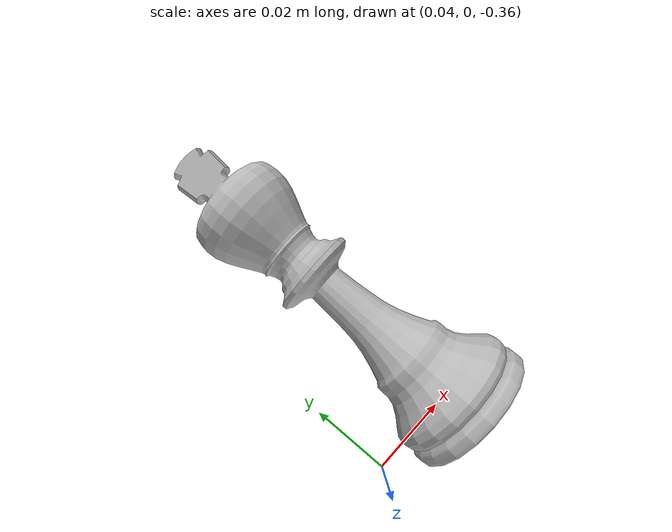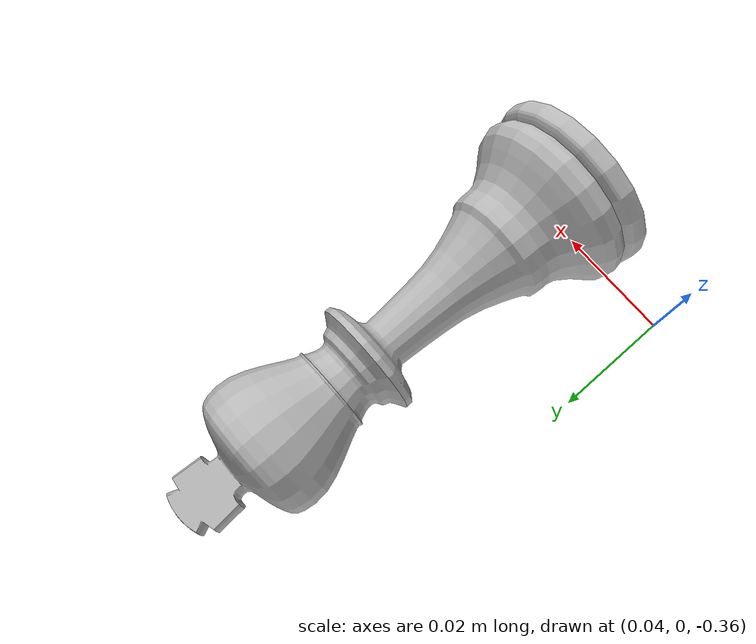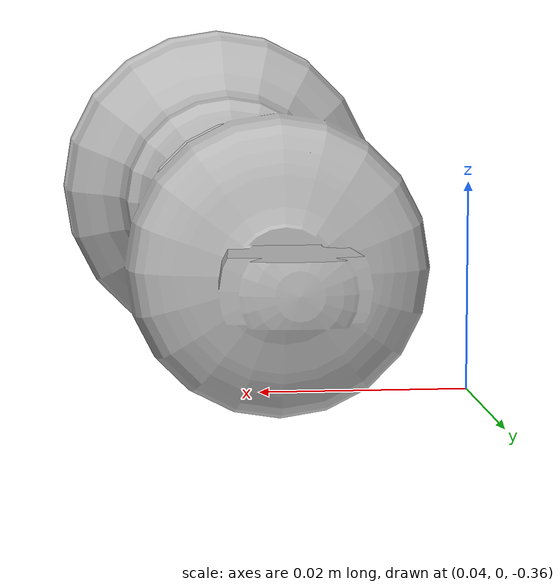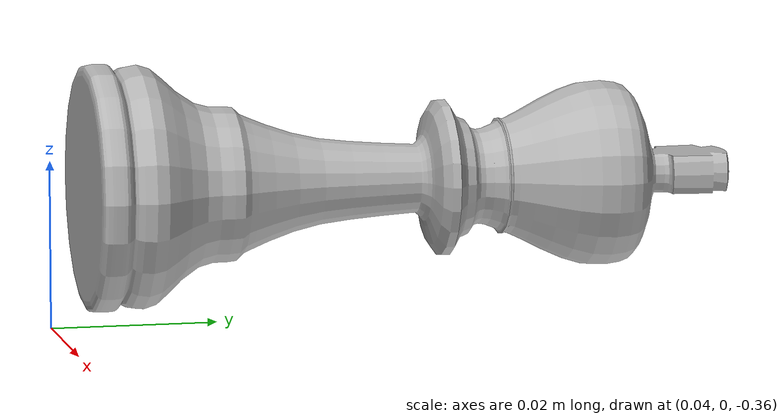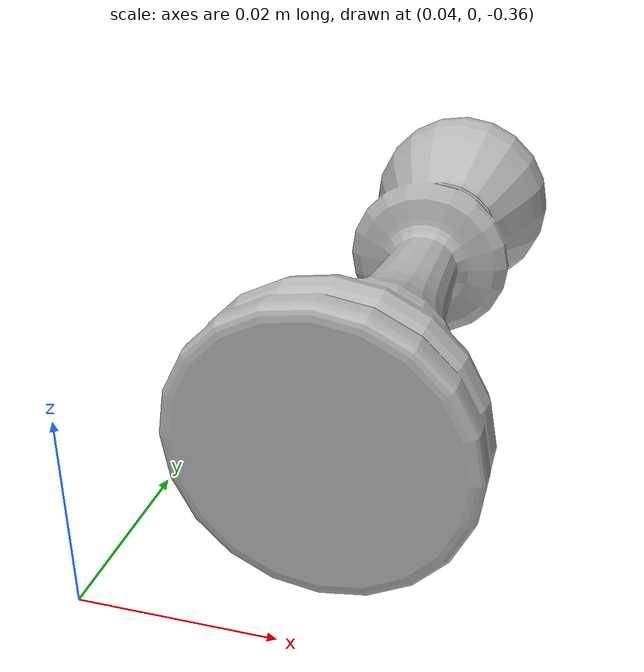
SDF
<?xml version="1.0"?>
<sdf version="1.7">
  <model name="light_king">
    <pose>0 0 0 0 0 0</pose>
    <link name="link">
      <inertial>
        <pose>0.06412923076923077 0.019011153846153848 -0.33979076923076923 0 0 0</pose>
        <mass>0.043616578647879094</mass>
        <inertia>
          <ixx>2.3995239761419407e-05</ixx>
          <ixy>0.0</ixy>
          <ixz>0.0</ixz>
          <iyy>5.956662679069783e-06</iyy>
          <iyz>0.0</iyz>
          <izz>2.3995559900224386e-05</izz>
        </inertia>
      </inertial>
      <collision name="collision">
        <pose>0.06412923076923077 0.03802153846153846 -0.33979076923076923 0 0 0</pose>
        <geometry>
          <box>
            <size>0.028626153846153846 0.07604153846153845 0.028624615384615384</size>
          </box>
        </geometry>
      </collision>
      <visual name="box_visual">
        <geometry>
          <mesh>
            <uri>model.obj</uri>
            <scale>0.00015384615384615385 0.00015384615384615385 0.00015384615384615385</scale>
          </mesh>
        </geometry>
      </visual>
    </link>
  </model>
</sdf>
